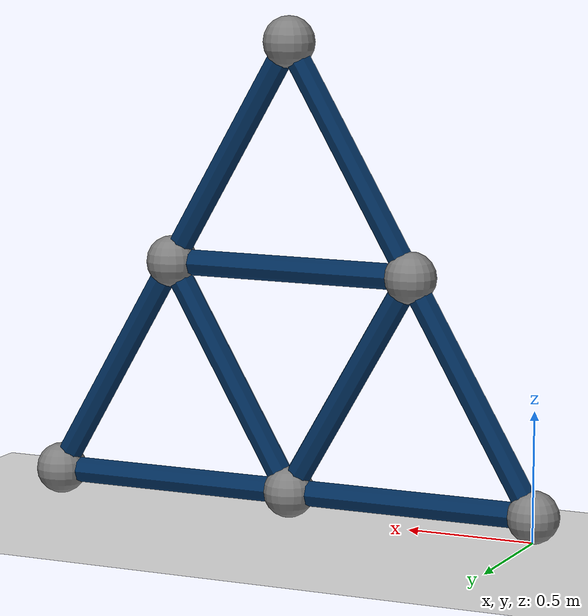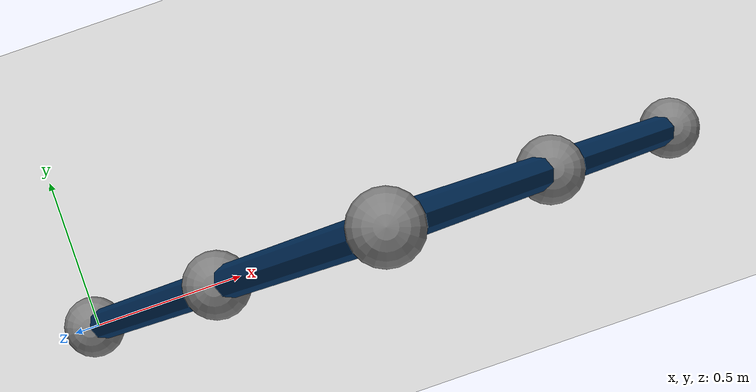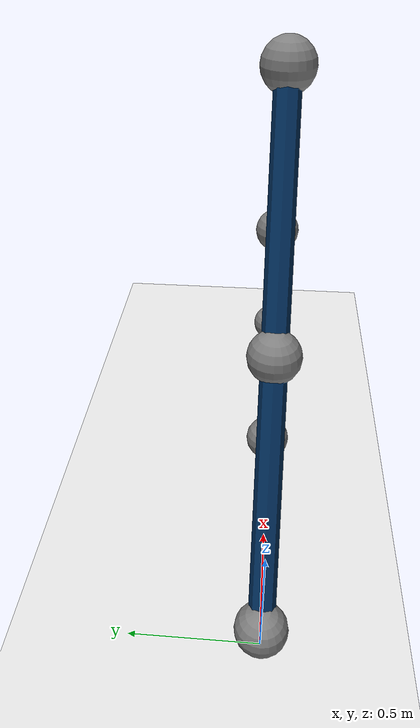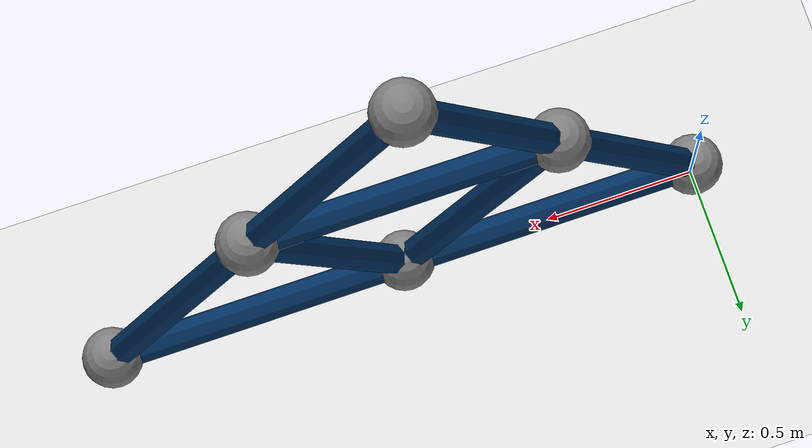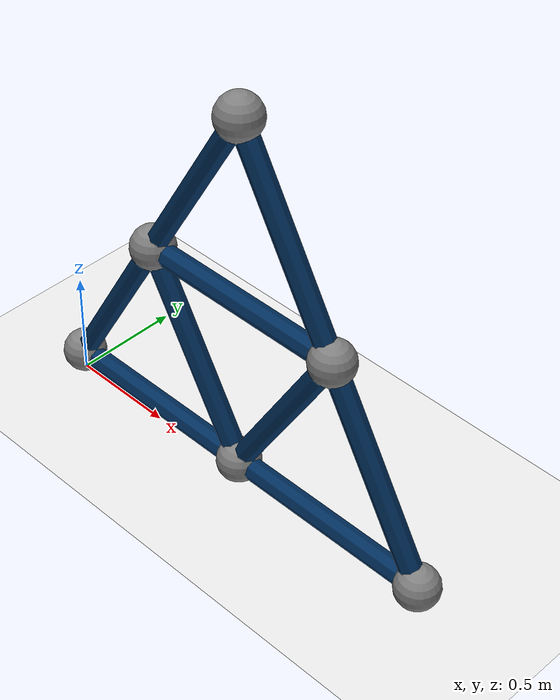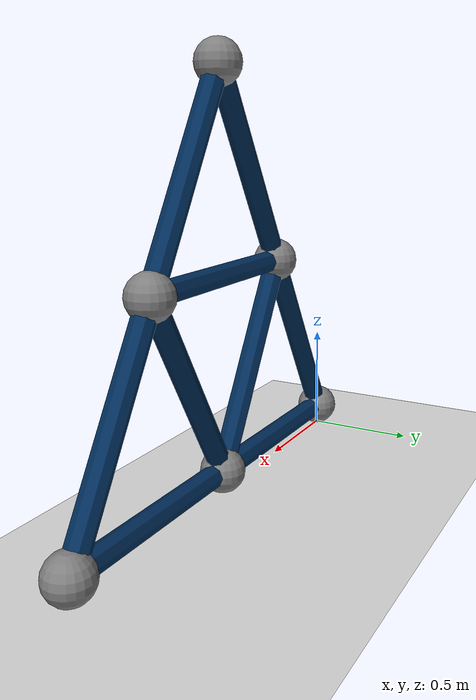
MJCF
<mujoco model="pyramid">
    <!-- Set Simulator options -->
    <compiler inertiafromgeom="true"/>
    <option timestep="0.002" gravity="0 0 -9.81" integrator="implicit"/>

    <!-- Assests -->
    <asset>
    <texture name="texplane"
             type="2d"
             builtin="checker"
             rgb1="0.2 0.3 0.4"
             rgb2="0.1 0.2 0.3"
             width="512"
             height="512"/>

    <material name="matplane"
              texture="texplane"
              texrepeat="20 20"
              reflectance="0.2"/>

    <texture type="skybox"
             builtin="gradient"
             rgb1="1 1 1"
             rgb2="0.9 0.9 1"
             width="512"
             height="512"/>
</asset>
<visual>
    <headlight ambient="0.6 0.6 0.6"
               diffuse="0.8 0.8 0.8"
               specular="0.1 0.1 0.1"/>
</visual>

    <!-- Define default geometry properties -->
    <default>
    <geom type="sphere" size="0.1"/>
    </default>

    <worldbody>
    <!-- Lighting and ground plane -->
    <light name="key" pos="0 0 2" dir="0 0 -1"/>
    <geom type="plane" name="plane1" size="50 50 0.1" rgba="0.9 0.9 0.9 1" material="matplane"/>

    <body name="pyramid" pos="0 0 0.1">
        <!-- Nodes -->
        <!-- Triangle 1 -->
        <body name="node_1" pos="0 0 0">
        <!-- 3D sliding joints to allow movement in X, Y, Z -->
        <joint name="node_1_x" type="slide" pos="0 0 0" axis="1 0 0"/>
        <joint name="node_1_z" type="slide" pos="0 0 0" axis="0 0 1"/>
        <geom/>
        <site name="node_1_site"/>
        </body>

        <body name="node_2" pos="1 0 0">
        <joint name="node_2_x" type="slide" pos="0 0 0" axis="1 0 0"/>
        <joint name="node_2_z" type="slide" pos="0 0 0" axis="0 0 1"/>
        <geom/>
        <site name="node_2_site"/>
        </body>

        <body name="node_3" pos="0.5 0 0.866">
        <joint name="node_3_x" type="slide" pos="0 0 0" axis="1 0 0"/>
        <joint name="node_3_z" type="slide" pos="0 0 0" axis="0 0 1"/>
        <geom/>
        <site name="node_3_site"/>
        </body>

        <!-- Triangle 2 -->
        <body name="node_4" pos="2 0 0">
        <joint name="node_4_x" type="slide" pos="0 0 0" axis="1 0 0"/>
        <joint name="node_4_z" type="slide" pos="0 0 0" axis="0 0 1"/>
        <geom/>
        <site name="node_4_site"/>
        </body>

        <body name="node_5" pos="1.5 0 0.866">
        <joint name="node_5_x" type="slide" pos="0 0 0" axis="1 0 0"/>
        <joint name="node_5_z" type="slide" pos="0 0 0" axis="0 0 1"/>
        <geom/>
        <site name="node_5_site"/>
        </body>

        <body name="node_6" pos="1 0 1.732">
        <joint name="node_6_x" type="slide" pos="0 0 0" axis="1 0 0"/>
        <joint name="node_6_z" type="slide" pos="0 0 0" axis="0 0 1"/>
        <geom/>
        <site name="node_6_site"/>
        </body>
    </body>
    </worldbody>

    <tendon>
    <!-- Spatial tendons acting as edges of the triangle -->
    <spatial name="edge_12" width="0.05" rgba="0.0 0.1804 0.3647 1" range="0.2 3">
      <site site="node_1_site"/>
      <site site="node_2_site"/>
    </spatial>
    <spatial name="edge_23" width="0.05" rgba="0.0 0.1804 0.3647 1" >
      <site site="node_2_site"/>
      <site site="node_3_site"/>
    </spatial>

    <spatial name="edge_31" width="0.05" rgba="0.0 0.1804 0.3647 1" range="0.2 3">
      <site site="node_3_site"/>
      <site site="node_1_site"/>
    </spatial>

    <spatial name="edge_45" width="0.05" rgba="0.0 0.1804 0.3647 1" range="0.2 3">
      <site site="node_4_site"/>
      <site site="node_5_site"/>
    </spatial>
    <spatial name="edge_56" width="0.05" rgba="0.0 0.1804 0.3647 1" range="0.2 3">
      <site site="node_5_site"/>
      <site site="node_6_site"/>
    </spatial>

    <spatial name="edge_63" width="0.05" rgba="0.0 0.1804 0.3647 1" range="0.2 3">
      <site site="node_6_site"/>
      <site site="node_3_site"/>
    </spatial>

    <spatial name="edge_42" width="0.05" rgba="0.0 0.1804 0.3647 1" range="0.2 3">
      <site site="node_4_site"/>
      <site site="node_2_site"/>
    </spatial>
    <spatial name="edge_52" width="0.05" rgba="0.0 0.1804 0.3647 1">
      <site site="node_5_site"/>
      <site site="node_2_site"/>
    </spatial>

    <spatial name="edge_53" width="0.05" rgba="0.0 0.1804 0.3647 1">
      <site site="node_5_site"/>
      <site site="node_3_site"/>
    </spatial>

    <!-- A combined spatial tendon tracking the distance of edge 12, and 23 -->
    <spatial name="213_length" width="0.05" rgba="0.0 0.1804 0.3647 1">
      <site site="node_2_site"/>
      <site site="node_1_site"/>
      <site site="node_3_site"/>
    </spatial>

    <spatial name="245_length" width="0.05" rgba="0.0 0.1804 0.3647 1">
      <site site="node_2_site"/>
      <site site="node_4_site"/>
      <site site="node_5_site"/>
    </spatial>

    <spatial name="563_length" width="0.05" rgba="0.0 0.1804 0.3647 1">
      <site site="node_5_site"/>
      <site site="node_6_site"/>
      <site site="node_3_site"/>
    </spatial>
    </tendon>

    <actuator>
    <intvelocity name="Edge_12" tendon="edge_12" ctrlrange="-0.05 0.05" actrange="0 3" kp="750" dampratio="1"/>
    <intvelocity name="Edge_31" tendon="edge_31" ctrlrange="-0.05 0.05" actrange="0 3" kp="750" dampratio="1"/>
    <intvelocity name="Edge_45" tendon="edge_45" ctrlrange="-0.05 0.05" actrange="0 3" kp="750" dampratio="1"/>
    <intvelocity name="Edge_42" tendon="edge_42" ctrlrange="-0.05 0.05" actrange="0 3" kp="750" dampratio="1"/>
    <intvelocity name="Edge_56" tendon="edge_56" ctrlrange="-0.05 0.05" actrange="0 3" kp="750" dampratio="1"/>
    <intvelocity name="Edge_63" tendon="edge_63" ctrlrange="-0.05 0.05" actrange="0 3" kp="750" dampratio="1"/>

    </actuator>

    <equality>
    <tendon name="213_length" tendon1="edge_23" tendon2="213_length" polycoef="0 -1 0 0 0" solref="0.04 1.2" solimp="0.85 0.95 0.001 0.5 2.0"/>
    <tendon name="245_length" tendon1="edge_52" tendon2="245_length" polycoef="0 -1 0 0 0" solref="0.04 1.2" solimp="0.85 0.95 0.001 0.5 2.0"/>
    <tendon name="563_length" tendon1="edge_53" tendon2="563_length" polycoef="0 -1 0 0 0" solref="0.04 1.2" solimp="0.85 0.95 0.001 0.5 2.0"/>
    </equality>
</mujoco>
